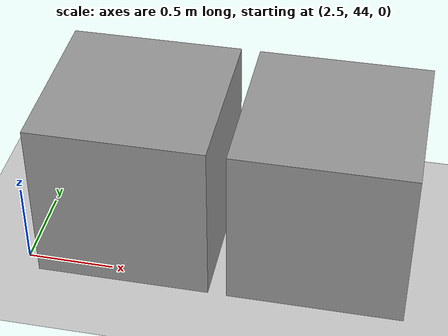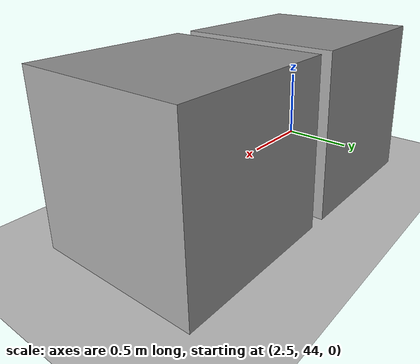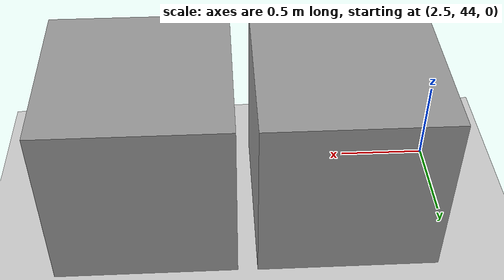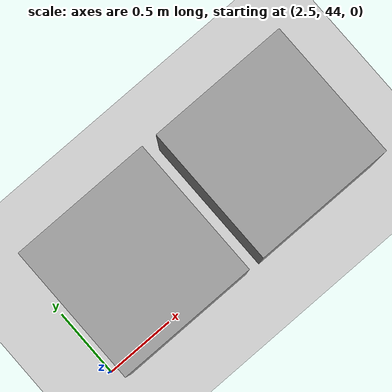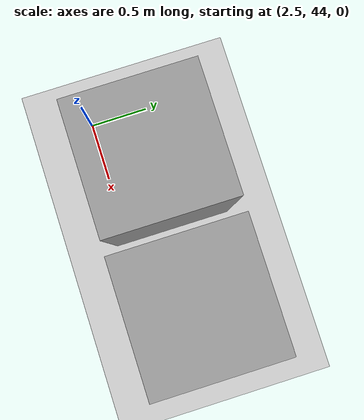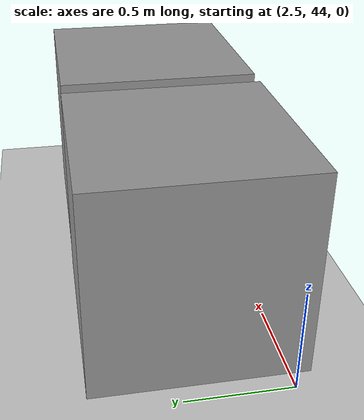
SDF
<sdf version="1.6">
 <world name="default">
  <model name="ground_plane">
   <static>1</static>
   <link name="link">
    <collision name="collision">
     <geometry><plane><normal>0 0 1</normal><size>100 100</size></plane></geometry>
     <surface><friction><ode><mu>100</mu><mu2>50</mu2></ode></friction></surface>
    </collision>
    <visual name="visual">
     <cast_shadows>0</cast_shadows>
     <geometry><plane><normal>0 0 1</normal><size>100 100</size></plane></geometry>
     <material>
      <script><uri>file://media/materials/scripts/gazebo.material</uri><name>Gazebo/Grey</name></script>
     </material>
    </visual>
   </link>
  </model>
  <model name="unit_box_28_clone_50_clone_1">
   <pose>4.19515 44.3991 0.5 0 -0 0</pose>
   <link name="link">
    <inertial>
     <mass>1</mass>
     <inertia>
      <ixx>0.166667</ixx>
      <ixy>0</ixy>
      <ixz>0</ixz>
      <iyy>0.166667</iyy>
      <iyz>0</iyz>
      <izz>0.166667</izz>
     </inertia>
    </inertial>
    <collision name="collision"><geometry><box><size>1 1 1</size></box></geometry></collision>
    <visual name="visual">
     <geometry><box><size>1 1 1</size></box></geometry>
     <material>
      <script><name>Gazebo/Grey</name><uri>file://media/materials/scripts/gazebo.material</uri></script>
     </material>
    </visual>
   </link>
  </model>
  <model name="unit_box_28_clone_50_clone_2">
   <pose>3.08656 44.4025 0.5 0 -0 0</pose>
   <link name="link">
    <inertial>
     <mass>1</mass>
     <inertia>
      <ixx>0.166667</ixx>
      <ixy>0</ixy>
      <ixz>0</ixz>
      <iyy>0.166667</iyy>
      <iyz>0</iyz>
      <izz>0.166667</izz>
     </inertia>
    </inertial>
    <collision name="collision"><geometry><box><size>1 1 1</size></box></geometry></collision>
    <visual name="visual">
     <geometry><box><size>1 1 1</size></box></geometry>
     <material>
      <script><name>Gazebo/Grey</name><uri>file://media/materials/scripts/gazebo.material</uri></script>
     </material>
    </visual>
   </link>
  </model>
 </world>
</sdf>
